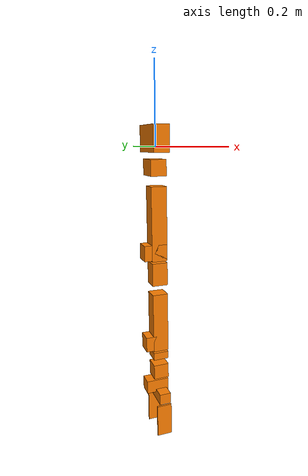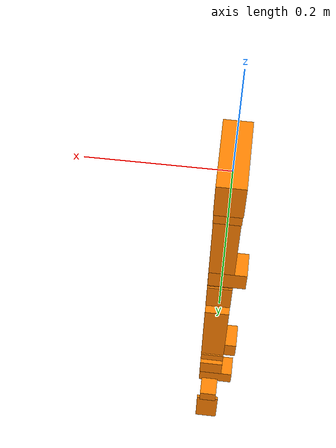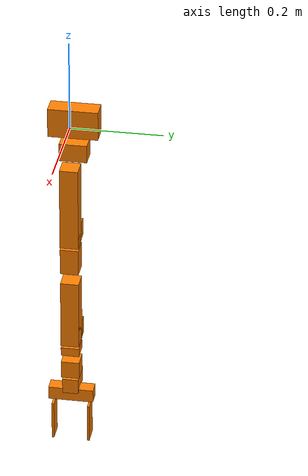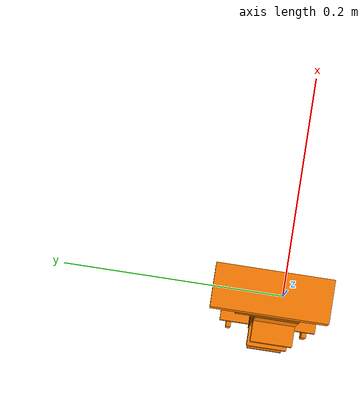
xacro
<?xml version="1.0"?>
<robot name="justina_right_arm" xmlns:xacro="http://www.ros.org/wiki/xacro">
  <xacro:include filename="$(find justina_description)/urdf/justina_right_arm.gazebo"/>

  <!--RIGHT ARM LINKS AND JOINTS-->
  <link name="shoulders_right_link">
    <visual>
      <origin xyz="0 0.01 0.02" rpy = "0 0 0"/>
      <geometry>
        <box size = "0.04025 0.108 0.065"/>
      </geometry>
      <material name = "ra_material"><color rgba="1.0 0.5 0 1"/></material>
    </visual>
    <collision>
      <origin xyz="0 0.01 0.02" rpy = "0 0 0"/>
      <geometry>
        <box size = "0.04025 0.108 0.065"/>
      </geometry>
    </collision>
    <inertial>
      <origin xyz="0 0.01 0.02" rpy = "0 0 0"/>
      <mass value="0.125"/>
      <inertia
        ixx="0.0015" ixy="0.0" ixz="0.0"
        iyy="0.002175" iyz="0.0"
        izz="0.003075"/>
    </inertial>
  </link>
  <link name="right_arm_link1">
    <visual>
      <origin xyz="0 0.01 -0.04881" rpy = "0 0 0"/>
      <geometry>
        <box size = "0.04025 0.06 0.04025"/>
      </geometry>
      <material name = "ra_material"><color rgba="1.0 0.5 0 1"/></material>
    </visual>
    <collision>
      <origin xyz="0 0.01 -0.04881" rpy = "0 0 0"/>
      <geometry>
        <box size = "0.04025 0.06 0.04025"/>
      </geometry>
    </collision>
    <inertial>
      <origin xyz="0 0.01 -0.04881" rpy = "0 0 0"/>
      <mass value="0.125"/>
      <inertia
        ixx="0.0015" ixy="0.0" ixz="0.0"
        iyy="0.002175" iyz="0.0"
        izz="0.003075"/>
    </inertial>
  </link>
  <link name="right_arm_link2">
    <visual>
      <origin xyz="0 0 -0.125" rpy = "0 0 0"/>
      <geometry>
        <box size = "0.04025 0.04025 0.19"/>
      </geometry>
      <material name = "ra_material"><color rgba="1.0 0.5 0 1"/></material>
    </visual>
    <visual>
      <origin xyz="-0.01 0 -0.197" rpy = "0 0 0"/>
      <geometry>
        <box size = "0.06 0.04025 0.04025"/>
      </geometry>
      <material name = "la_material"><color rgba="1.0 0.5 0 1"/></material>
    </visual>
    <collision>
      <origin xyz="0 0 -0.125" rpy = "0 0 0"/>
      <geometry>
        <box size = "0.04025 0.04025 0.19"/>
      </geometry>
    </collision>
    <collision>
      <origin xyz="-0.01 0 -0.197" rpy = "0 0 0"/>
      <geometry>
        <box size = "0.06 0.04025 0.04025"/>
      </geometry>
    </collision>
    <inertial>
      <origin xyz="0 0 -0.175" rpy = "0 0 0"/>
      <mass value="0.155"/>
      <inertia
        ixx="0.0015" ixy="0.0" ixz="0.0"
        iyy="0.002175" iyz="0.0"
        izz="0.003075"/>
    </inertial>
  </link>
  <link name="right_arm_link3">
    <visual>
      <origin xyz="0 0 -0.04" rpy = "0 0 0"/>
      <geometry>
        <box size = "0.04025 0.04025 0.06"/>
      </geometry>
      <material name = "ra_material"><color rgba="1.0 0.5 0 1"/></material>
    </visual>
    <collision>
      <origin xyz="0 0 -0.04" rpy = "0 0 0"/>
      <geometry>
        <box size = "0.04025 0.04025 0.06"/>
      </geometry>
    </collision>
    <inertial>
      <origin xyz="0 0 -0.04" rpy = "0 0 0"/>
      <mass value="0.125"/>
      <inertia
        ixx="0.0015" ixy="0.0" ixz="0.0"
        iyy="0.002175" iyz="0.0"
        izz="0.003075"/>
    </inertial>
  </link>
  <link name="right_arm_link4">
    <visual>
      <origin xyz="0 0 -0.11" rpy = "0 0 0"/>
      <geometry>
        <box size = "0.04025 0.04025 0.16"/>
      </geometry>
      <material name = "ra_material"><color rgba="1.0 0.5 0 1"/></material>
    </visual>
    <visual>
      <origin xyz="-0.01 0 -0.167" rpy = "0 0 0"/>
      <geometry>
        <box size = "0.06 0.04025 0.04025"/>
      </geometry>
      <material name = "la_material"><color rgba="1.0 0.5 0 1"/></material>
    </visual>
    <collision>
      <origin xyz="0 0 -0.11" rpy = "0 0 0"/>
      <geometry>
        <box size = "0.04025 0.04025 0.16"/>
      </geometry>
    </collision>
    <collision>
      <origin xyz="-0.01 0 -0.167" rpy = "0 0 0"/>
      <geometry>
        <box size = "0.06 0.04025 0.04025"/>
      </geometry>
    </collision>
    <inertial>
      <origin xyz="-0.01 0 -0.147" rpy = "0 0 0"/>
      <mass value="0.125"/>
      <inertia
        ixx="0.0015" ixy="0.0" ixz="0.0"
        iyy="0.002175" iyz="0.0"
        izz="0.003075"/>
    </inertial>
  </link>
  <link name="right_arm_link5">
    <visual>
      <origin xyz="0 0 -0.025" rpy = "0 0 0"/>
      <geometry>
        <box size = "0.04025 0.04025 0.02"/>
      </geometry>
      <material name = "ra_material"><color rgba="1.0 0.5 0 1"/></material>
    </visual>
    <collision>
      <origin xyz="0 0 -0.025" rpy = "0 0 0"/>
      <geometry>
        <box size = "0.04025 0.04025 0.02"/>
      </geometry>
    </collision>
    <inertial>
      <origin xyz="0 0 -0.025" rpy = "0 0 0"/>
      <mass value="0.125"/>
      <inertia
        ixx="0.0015" ixy="0.0" ixz="0.0"
        iyy="0.002175" iyz="0.0"
        izz="0.003075"/>
    </inertial>
  </link>
  <link name="right_arm_link6">
    <visual>
      <origin xyz="0 0 -0.042" rpy = "0 0 0"/>
      <geometry>
        <box size = "0.04025 0.04025 0.04"/>
      </geometry>
      <material name = "ra_material"><color rgba="1.0 0.5 0 1"/></material>
    </visual>
    <collision>
      <origin xyz="0 0 -0.042" rpy = "0 0 0"/>
      <geometry>
        <box size = "0.04025 0.04025 0.04"/>
      </geometry>
    </collision>
    <inertial>
      <origin xyz="0 0 -0.042" rpy = "0 0 0"/>
      <mass value="0.125"/>
      <inertia
        ixx="0.0015" ixy="0.0" ixz="0.0"
        iyy="0.002175" iyz="0.0"
        izz="0.003075"/>
    </inertial>
  </link>
  <link name="right_arm_link7">
    <visual>
      <origin xyz="-0.01 0 -0.03" rpy = "0 0 0"/>
      <geometry>
        <box size = "0.06 0.03525 0.03525"/>
      </geometry>
      <material name = "ra_material"><color rgba="1.0 0.5 0 1"/></material>
    </visual>
    <visual>
      <origin xyz="0 0 -0.055" rpy = "0 0 0"/>
      <geometry>
        <box size = "0.03 0.1 0.03"/>
      </geometry>
      <material name = "ra_material"><color rgba="1.0 0.5 0 1"/></material>
    </visual>
    <collision>
      <origin xyz="-0.01 0 -0.03" rpy = "0 0 0"/>
      <geometry>
        <box size = "0.06 0.03525 0.03525"/>
      </geometry>
    </collision>
    <collision>
      <origin xyz="0 0 -0.055" rpy = "0 0 0"/>
      <geometry>
        <box size = "0.03 0.1 0.03"/>
      </geometry>
    </collision>
    <inertial>
      <origin xyz="-0.01 0 -0.05" rpy = "0 0 0"/>
      <mass value="0.125"/>
      <inertia
        ixx="0.0015" ixy="0.0" ixz="0.0"
        iyy="0.002175" iyz="0.0"
        izz="0.003075"/>
    </inertial>
  </link>
  <link name="right_arm_grip_left">
    <visual>
      <origin xyz="0 0 -0.065" rpy = "0 0 0"/>
      <geometry>
        <box size = "0.04 0.005 0.09"/>
      </geometry>
      <material name = "ra_material"><color rgba="1.0 0.5 0 1"/></material>
    </visual>
    <collision>
      <origin xyz="0 0 -0.065" rpy = "0 0 0"/>
      <geometry>
        <box size = "0.04 0.005 0.09"/>
      </geometry>
    </collision>
    <inertial>
      <origin xyz="0 0 -0.065" rpy = "0 0 0"/>
      <mass value="0.125"/>
      <inertia
        ixx="0.0015" ixy="0.0" ixz="0.0"
        iyy="0.002175" iyz="0.0"
        izz="0.003075"/>
    </inertial>
  </link>
  <link name="right_arm_grip_right">
    <visual>
      <origin xyz="0 0 -0.065" rpy = "0 0 0"/>
      <geometry>
        <box size = "0.04 0.005 0.09"/>
      </geometry>
      <material name = "ra_material"><color rgba="1.0 0.5 0 1"/></material>
    </visual>
    <collision>
      <origin xyz="0 0 -0.065" rpy = "0 0 0"/>
      <geometry>
        <box size = "0.04 0.005 0.09"/>
      </geometry>
    </collision>
    <inertial>
      <origin xyz="0 0 -0.065" rpy = "0 0 0"/>
      <mass value="0.125"/>
      <inertia
        ixx="0.0015" ixy="0.0" ixz="0.0"
        iyy="0.002175" iyz="0.0"
        izz="0.003075"/>
    </inertial>
  </link>

  <link name="right_arm_grip_center"/>

  <joint name="ra_1_joint" type="revolute">
    <origin xyz="0 0.0 0" rpy="0 0 0"/>
    <parent link="shoulders_right_link"/>
    <child link="right_arm_link1"/>
    <axis xyz="0 -1 0" />
    <dynamics damping ="0.1" />
    <limit effort="16.0" velocity="3.0" lower="-1.7" upper="1.7"/>
  </joint>
  <joint name="ra_2_joint" type="revolute">
    <origin xyz="0 0.0 -0.06381" rpy="0 0 0"/>
    <parent link="right_arm_link1"/>
    <child link="right_arm_link2"/>
    <axis xyz="1 0 0" />
    <dynamics damping ="0.1" />
    <limit effort="8.0" velocity="3.0" lower="-1.85" upper="0.75"/>
  </joint>
  <joint name="ra_3_joint" type="revolute">
    <origin xyz="0 0.0 -0.215" rpy="0 0 0"/>
    <parent link="right_arm_link2"/>
    <child link="right_arm_link3"/>
    <axis xyz="0 0 1" />
    <dynamics damping ="0.1" />
    <limit effort="6.0" velocity="3.0" lower="-2.5" upper="2.5"/>
  </joint>
  <joint name="ra_4_joint" type="revolute">
    <origin xyz="0 0.0 -0.065" rpy="0 0 0"/>
    <parent link="right_arm_link3"/>
    <child link="right_arm_link4"/>
    <axis xyz="0 -1 0" />
    <dynamics damping ="0.1" />
    <limit effort="8.0" velocity="3.0" lower="-1.8" upper="1.8"/>
  </joint>
  <joint name="ra_5_joint" type="revolute">
    <origin xyz="0 0.0 -0.18" rpy="0 0 0"/>
    <parent link="right_arm_link4"/>
    <child link="right_arm_link5"/>
    <axis xyz="0 0 1" />
    <dynamics damping ="0.1" />
    <limit effort="6.0" velocity="3.0" lower="-2.5" upper="2.5"/>
  </joint>
  <joint name="ra_6_joint" type="revolute">
    <origin xyz="0 0.0 -0.03" rpy="0 0 0"/>
    <parent link="right_arm_link5"/>
    <child link="right_arm_link6"/>
    <axis xyz="0 -1 0" />
    <dynamics damping ="0.1" />
    <limit effort="6.0" velocity="3.0" lower="-1.4" upper="1.57"/>
  </joint>
  <joint name="ra_7_joint" type="revolute">
    <origin xyz="0 0.0 -0.055" rpy="0 0 0"/>
    <parent link="right_arm_link6"/>
    <child link="right_arm_link7"/>
    <axis xyz="0 0 1" />
    <dynamics damping ="0.1" />
    <limit effort="3.0" velocity="3.0" lower="-2.5" upper="2.5"/>
  </joint>
  <joint name="ra_grip_left" type="revolute">
    <origin xyz="0 0.04 -0.06" rpy="0 0 0"/>
    <parent link="right_arm_link7"/>
    <child link="right_arm_grip_left"/>
    <axis xyz="1 0 0" />
    <dynamics damping ="0.1" />
    <limit effort="3.0" velocity="3.0" lower="-0.3" upper="1.5"/>
  </joint>
  <joint name="ra_grip_right" type="revolute">
    <origin xyz="0 -0.04 -0.06" rpy="0 0 0"/>
    <parent link="right_arm_link7"/>
    <child link="right_arm_grip_right"/>
    <axis xyz="-1 0 0" />
    <dynamics damping ="0.1" />
    <limit effort="3.0" velocity="3.0" lower="-0.3" upper="1.5"/>
  </joint>
  <joint name="ra_grip_center_joint" type="fixed">
    <origin xyz="0 0 -0.13" rpy="0 0 0"/>
    <parent link="right_arm_link7"/>
    <child link="right_arm_grip_center"/>
  </joint>
</robot>
